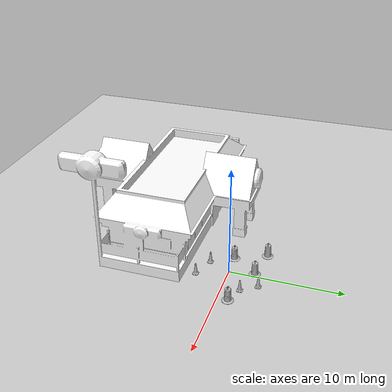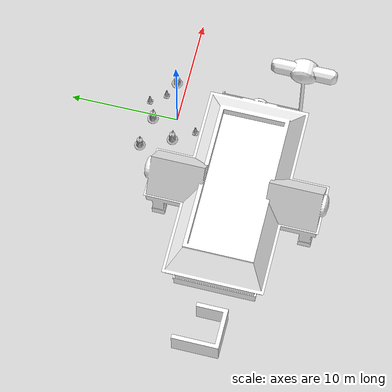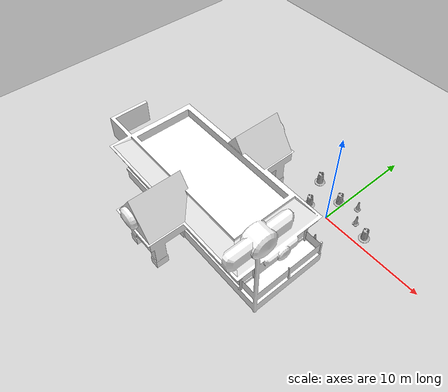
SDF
<sdf version="1.7">
 <world name="default">
  <light name="sun" type="directional">
   <pose>0 0 10 0 -0 0</pose>
   <diffuse>0.8 0.8 0.8 1</diffuse>
   <specular>0.2 0.2 0.2 1</specular>
   <attenuation>
    <range>1000</range>
    <constant>0.9</constant>
    <linear>0.01</linear>
    <quadratic>0.001</quadratic>
   </attenuation>
   <direction>-0.5 0.1 -0.9</direction>
   <spot><inner_angle>0</inner_angle><outer_angle>0</outer_angle><falloff>0</falloff></spot>
  </light>
  <model name="ground_plane">
   <static>1</static>
   <link name="link">
    <collision name="collision">
     <geometry><plane><normal>0 0 1</normal><size>100 100</size></plane></geometry>
     <surface><friction><ode><mu>100</mu><mu2>50</mu2></ode></friction></surface>
    </collision>
    <visual name="visual">
     <cast_shadows>0</cast_shadows>
     <geometry><plane><normal>0 0 1</normal><size>100 100</size></plane></geometry>
     <material>
      <script><uri>file://media/materials/scripts/gazebo.material</uri><name>Gazebo/Grey</name></script>
     </material>
    </visual>
   </link>
  </model>
  <gravity>0 0 -9.8</gravity>
  <magnetic_field>6e-06 2.3e-05 -4.2e-05</magnetic_field>
  <atmosphere type="adiabatic"/>
  <physics type="ode">
   <max_step_size>0.001</max_step_size>
   <real_time_factor>1</real_time_factor>
   <real_time_update_rate>1000</real_time_update_rate>
  </physics>
  <scene><ambient>0.4 0.4 0.4 1</ambient><background>0.7 0.7 0.7 1</background><shadows>1</shadows></scene>
  <audio><device>default</device></audio>
  <spherical_coordinates>
   <surface_model>EARTH_WGS84</surface_model>
   <latitude_deg>0</latitude_deg>
   <longitude_deg>0</longitude_deg>
   <elevation>0</elevation>
   <heading_deg>0</heading_deg>
  </spherical_coordinates>
  <model name="Construction Barrel">
   <link name="link">
    <inertial>
     <pose>0 0 0.4 0 -0 0</pose>
     <mass>500</mass>
     <inertia><ixx>51.2096</ixx><iyy>51.2096</iyy><izz>25</izz><ixy>0</ixy><ixz>0</ixz><iyz>0</iyz></inertia>
    </inertial>
    <collision name="collision">
     <geometry><mesh><uri>model://construction_barrel/meshes/construction_barrel.dae</uri></mesh></geometry>
    </collision>
    <visual name="visual">
     <geometry><mesh><uri>model://construction_barrel/meshes/construction_barrel.dae</uri></mesh></geometry>
    </visual>
   </link>
   <pose>-2.06077 -0.054621 -1e-06 1e-06 -2e-06 -1.8e-05</pose>
  </model>
  <model name="Construction Cone">
   <link name="link">
    <collision name="collision">
     <geometry>
      <mesh><scale>10 10 10</scale><uri>model://construction_cone/meshes/construction_cone.dae</uri></mesh>
     </geometry>
    </collision>
    <visual name="visual">
     <geometry>
      <mesh><scale>10 10 10</scale><uri>model://construction_cone/meshes/construction_cone.dae</uri></mesh>
     </geometry>
    </visual>
    <inertial>
     <inertia><ixx>1</ixx><ixy>0</ixy><ixz>0</ixz><iyy>1</iyy><iyz>0</iyz><izz>1</izz></inertia>
     <mass>1</mass>
    </inertial>
   </link>
   <pose>-0.90178 -1.9452 0 -0 -0 -0</pose>
  </model>
  <model name="Construction Barrel_0">
   <link name="link">
    <inertial>
     <pose>0 0 0.4 0 -0 0</pose>
     <mass>500</mass>
     <inertia><ixx>51.2096</ixx><iyy>51.2096</iyy><izz>25</izz><ixy>0</ixy><ixz>0</ixz><iyz>0</iyz></inertia>
    </inertial>
    <collision name="collision">
     <geometry><mesh><uri>model://construction_barrel/meshes/construction_barrel.dae</uri></mesh></geometry>
    </collision>
    <visual name="visual">
     <geometry><mesh><uri>model://construction_barrel/meshes/construction_barrel.dae</uri></mesh></geometry>
    </visual>
   </link>
   <pose>-0.39958 2.21225 -0 2e-06 -1e-06 -1.6e-05</pose>
  </model>
  <model name="Construction Cone_0">
   <link name="link">
    <collision name="collision">
     <geometry>
      <mesh><scale>10 10 10</scale><uri>model://construction_cone/meshes/construction_cone.dae</uri></mesh>
     </geometry>
    </collision>
    <visual name="visual">
     <geometry>
      <mesh><scale>10 10 10</scale><uri>model://construction_cone/meshes/construction_cone.dae</uri></mesh>
     </geometry>
    </visual>
    <inertial>
     <inertia><ixx>1</ixx><ixy>0</ixy><ixz>0</ixz><iyy>1</iyy><iyz>0</iyz><izz>1</izz></inertia>
     <mass>1</mass>
    </inertial>
   </link>
   <pose>2.1657 1.54522 -0 0 -0 0</pose>
  </model>
  <model name="Construction Cone_1">
   <link name="link">
    <collision name="collision">
     <geometry>
      <mesh><scale>10 10 10</scale><uri>model://construction_cone/meshes/construction_cone.dae</uri></mesh>
     </geometry>
    </collision>
    <visual name="visual">
     <geometry>
      <mesh><scale>10 10 10</scale><uri>model://construction_cone/meshes/construction_cone.dae</uri></mesh>
     </geometry>
    </visual>
    <inertial>
     <inertia><ixx>1</ixx><ixy>0</ixy><ixz>0</ixz><iyy>1</iyy><iyz>0</iyz><izz>1</izz></inertia>
     <mass>1</mass>
    </inertial>
   </link>
   <pose>1.08709 -2.67478 -0 0 -1e-06 0</pose>
  </model>
  <model name="Construction Barrel_1">
   <link name="link">
    <inertial>
     <pose>0 0 0.4 0 -0 0</pose>
     <mass>500</mass>
     <inertia><ixx>51.2096</ixx><iyy>51.2096</iyy><izz>25</izz><ixy>0</ixy><ixz>0</ixz><iyz>0</iyz></inertia>
    </inertial>
    <collision name="collision">
     <geometry><mesh><uri>model://construction_barrel/meshes/construction_barrel.dae</uri></mesh></geometry>
    </collision>
    <visual name="visual">
     <geometry><mesh><uri>model://construction_barrel/meshes/construction_barrel.dae</uri></mesh></geometry>
    </visual>
   </link>
   <pose>3.65916 0.929872 -1e-06 3e-06 7e-06 -9e-06</pose>
  </model>
  <model name="Construction Cone_2">
   <link name="link">
    <collision name="collision">
     <geometry>
      <mesh><scale>10 10 10</scale><uri>model://construction_cone/meshes/construction_cone.dae</uri></mesh>
     </geometry>
    </collision>
    <visual name="visual">
     <geometry>
      <mesh><scale>10 10 10</scale><uri>model://construction_cone/meshes/construction_cone.dae</uri></mesh>
     </geometry>
    </visual>
    <inertial>
     <inertia><ixx>1</ixx><ixy>0</ixy><ixz>0</ixz><iyy>1</iyy><iyz>0</iyz><izz>1</izz></inertia>
     <mass>1</mass>
    </inertial>
   </link>
   <pose>1.23013 2.89913 -1e-05 0 -0 0</pose>
  </model>
  <model name="Construction Barrel_2">
   <link name="link">
    <inertial>
     <pose>0 0 0.4 0 -0 0</pose>
     <mass>500</mass>
     <inertia><ixx>51.2096</ixx><iyy>51.2096</iyy><izz>25</izz><ixy>0</ixy><ixz>0</ixz><iyz>0</iyz></inertia>
    </inertial>
    <collision name="collision">
     <geometry><mesh><uri>model://construction_barrel/meshes/construction_barrel.dae</uri></mesh></geometry>
    </collision>
    <visual name="visual">
     <geometry><mesh><uri>model://construction_barrel/meshes/construction_barrel.dae</uri></mesh></geometry>
    </visual>
   </link>
   <pose>-3.31128 2.69792 -1e-06 -0 4e-06 -7e-06</pose>
  </model>
  <model name="Fast Food">
   <static>1</static>
   <link name="link">
    <pose>0 0 3.15931 0 -0 0</pose>
    <collision name="collision">
     <geometry><mesh><scale>3 3 2</scale><uri>model://fast_food/meshes/fast_food.dae</uri></mesh></geometry>
    </collision>
    <visual name="visual">
     <geometry><mesh><scale>3 3 2</scale><uri>model://fast_food/meshes/fast_food.dae</uri></mesh></geometry>
     <material>
      <script>
       <uri>model://fast_food/materials/scripts</uri>
       <uri>model://fast_food/materials/textures</uri>
       <name>FastFood/Diffuse</name>
      </script>
      <shader type="normal_map_tangent_space"><normal_map>FastFood_Normal.png</normal_map></shader>
     </material>
    </visual>
   </link>
   <pose>-7.52396 -7.34324 0 0 -0 0</pose>
  </model>
 </world>
</sdf>
